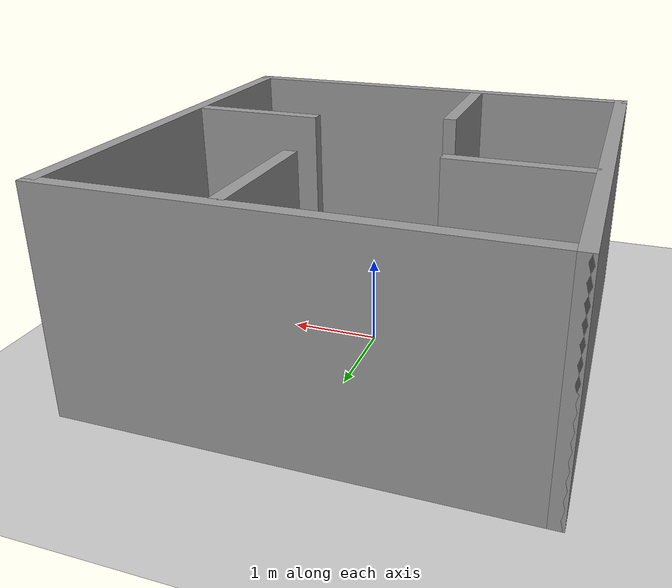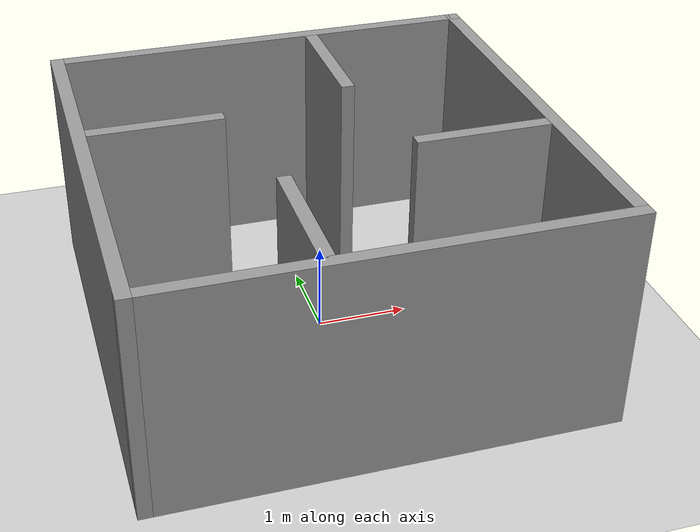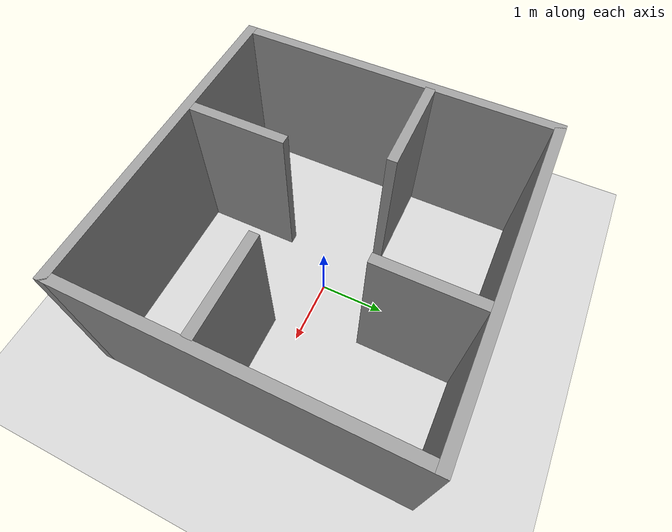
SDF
<sdf version="1.7">
 <world name="default">
  <light name="sun" type="directional">
   <pose>0 0 10 0 -0 0</pose>
   <diffuse>0.8 0.8 0.8 1</diffuse>
   <specular>0.2 0.2 0.2 1</specular>
   <attenuation>
    <range>1000</range>
    <constant>0.9</constant>
    <linear>0.01</linear>
    <quadratic>0.001</quadratic>
   </attenuation>
   <direction>-0.5 0.1 -0.9</direction>
   <spot><inner_angle>0</inner_angle><outer_angle>0</outer_angle><falloff>0</falloff></spot>
  </light>
  <model name="ground_plane">
   <static>1</static>
   <link name="link">
    <collision name="collision">
     <geometry><plane><normal>0 0 1</normal><size>100 100</size></plane></geometry>
     <surface>
      <contact><collide_bitmask>65535</collide_bitmask></contact>
      <friction><ode><mu>100</mu><mu2>50</mu2></ode></friction>
     </surface>
    </collision>
    <visual name="visual">
     <cast_shadows>0</cast_shadows>
     <geometry><plane><normal>0 0 1</normal><size>100 100</size></plane></geometry>
     <material>
      <script><uri>file://media/materials/scripts/gazebo.material</uri><name>Gazebo/Grey</name></script>
     </material>
    </visual>
   </link>
  </model>
  <gravity>0 0 -9.8</gravity>
  <magnetic_field>6e-06 2.3e-05 -4.2e-05</magnetic_field>
  <atmosphere type="adiabatic"/>
  <physics type="ode">
   <max_step_size>0.001</max_step_size>
   <real_time_factor>1</real_time_factor>
   <real_time_update_rate>1000</real_time_update_rate>
  </physics>
  <scene><ambient>0.4 0.4 0.4 1</ambient><background>0.7 0.7 0.7 1</background><shadows>1</shadows></scene>
  <spherical_coordinates>
   <surface_model>EARTH_WGS84</surface_model>
   <latitude_deg>0</latitude_deg>
   <longitude_deg>0</longitude_deg>
   <elevation>0</elevation>
   <heading_deg>0</heading_deg>
  </spherical_coordinates>
  <model name="nov17_2">
   <pose>-0.001778 0.004626 0 0 -0 0</pose>
   <link name="Wall_1">
    <collision name="Wall_1_Collision">
     <geometry><box><size>5 0.15 2.5</size></box></geometry>
     <pose>0 0 1.25 0 -0 0</pose>
    </collision>
    <visual name="Wall_1_Visual">
     <pose>0 0 1.25 0 -0 0</pose>
     <geometry><box><size>5 0.15 2.5</size></box></geometry>
     <material>
      <script><uri>file://media/materials/scripts/gazebo.material</uri><name>Gazebo/Grey</name></script>
      <ambient>1 1 1 1</ambient>
     </material>
     <meta><layer>0</layer></meta>
    </visual>
    <pose>-0 2.425 0 0 -0 0</pose>
   </link>
   <link name="Wall_2">
    <collision name="Wall_2_Collision">
     <geometry><box><size>5 0.15 2.5</size></box></geometry>
     <pose>0 0 1.25 0 -0 0</pose>
    </collision>
    <visual name="Wall_2_Visual">
     <pose>0 0 1.25 0 -0 0</pose>
     <geometry><box><size>5 0.15 2.5</size></box></geometry>
     <material>
      <script><uri>file://media/materials/scripts/gazebo.material</uri><name>Gazebo/Grey</name></script>
      <ambient>1 1 1 1</ambient>
     </material>
     <meta><layer>0</layer></meta>
    </visual>
    <pose>2.425 -0 0 0 -0 -1.5708</pose>
   </link>
   <link name="Wall_3">
    <collision name="Wall_3_Collision">
     <geometry><box><size>5 0.15 2.5</size></box></geometry>
     <pose>0 0 1.25 0 -0 0</pose>
    </collision>
    <visual name="Wall_3_Visual">
     <pose>0 0 1.25 0 -0 0</pose>
     <geometry><box><size>5 0.15 2.5</size></box></geometry>
     <material>
      <script><uri>file://media/materials/scripts/gazebo.material</uri><name>Gazebo/Grey</name></script>
      <ambient>1 1 1 1</ambient>
     </material>
     <meta><layer>0</layer></meta>
    </visual>
    <pose>-0 -2.425 0 0 -0 3.14159</pose>
   </link>
   <link name="Wall_37">
    <collision name="Wall_37_Collision">
     <geometry><box><size>1.5 0.15 2.5</size></box></geometry>
     <pose>0 0 1.25 0 -0 0</pose>
    </collision>
    <visual name="Wall_37_Visual">
     <pose>0 0 1.25 0 -0 0</pose>
     <geometry><box><size>1.5 0.15 2.5</size></box></geometry>
     <material>
      <script><uri>file://media/materials/scripts/gazebo.material</uri><name>Gazebo/Grey</name></script>
      <ambient>1 1 1 1</ambient>
     </material>
     <meta><layer>0</layer></meta>
    </visual>
    <pose>0.58276 1.61895 0 0 -0 -1.5708</pose>
   </link>
   <link name="Wall_39">
    <collision name="Wall_39_Collision">
     <geometry><box><size>1.5 0.15 2.5</size></box></geometry>
     <pose>0 0 1.25 0 -0 0</pose>
    </collision>
    <visual name="Wall_39_Visual">
     <pose>0 0 1.25 0 -0 0</pose>
     <geometry><box><size>1.5 0.15 2.5</size></box></geometry>
     <material>
      <script><uri>file://media/materials/scripts/gazebo.material</uri><name>Gazebo/Grey</name></script>
      <ambient>1 1 1 1</ambient>
     </material>
     <meta><layer>0</layer></meta>
    </visual>
    <pose>-1.63851 0.561479 0 0 -0 0</pose>
   </link>
   <link name="Wall_4">
    <collision name="Wall_4_Collision">
     <geometry><box><size>5 0.15 2.5</size></box></geometry>
     <pose>0 0 1.25 0 -0 0</pose>
    </collision>
    <visual name="Wall_4_Visual">
     <pose>0 0 1.25 0 -0 0</pose>
     <geometry><box><size>5 0.15 2.5</size></box></geometry>
     <material>
      <script><uri>file://media/materials/scripts/gazebo.material</uri><name>Gazebo/Grey</name></script>
      <ambient>1 1 1 1</ambient>
     </material>
     <meta><layer>0</layer></meta>
    </visual>
    <pose>-2.425 -0 0 0 -0 1.5708</pose>
   </link>
   <link name="Wall_43">
    <collision name="Wall_43_Collision">
     <geometry><box><size>1.5 0.15 2.5</size></box></geometry>
     <pose>0 0 1.25 0 -0 0</pose>
    </collision>
    <visual name="Wall_43_Visual">
     <pose>0 0 1.25 0 -0 0</pose>
     <geometry><box><size>1.5 0.15 2.5</size></box></geometry>
     <material>
      <script><uri>file://media/materials/scripts/gazebo.material</uri><name>Gazebo/Grey</name></script>
      <ambient>1 1 1 1</ambient>
     </material>
     <meta><layer>0</layer></meta>
    </visual>
    <pose>-0.618442 -1.6193 0 0 -0 1.5708</pose>
   </link>
   <link name="Wall_45">
    <collision name="Wall_45_Collision">
     <geometry><box><size>1.5 0.15 2.5</size></box></geometry>
     <pose>0 0 1.25 0 -0 0</pose>
    </collision>
    <visual name="Wall_45_Visual">
     <pose>0 0 1.25 0 -0 0</pose>
     <geometry><box><size>1.5 0.15 2.5</size></box></geometry>
     <material>
      <script><uri>file://media/materials/scripts/gazebo.material</uri><name>Gazebo/Grey</name></script>
      <ambient>1 1 1 1</ambient>
     </material>
     <meta><layer>0</layer></meta>
    </visual>
    <pose>1.61278 -0.519003 0 0 -0 3.14159</pose>
   </link>
   <static>1</static>
  </model>
 </world>
</sdf>
